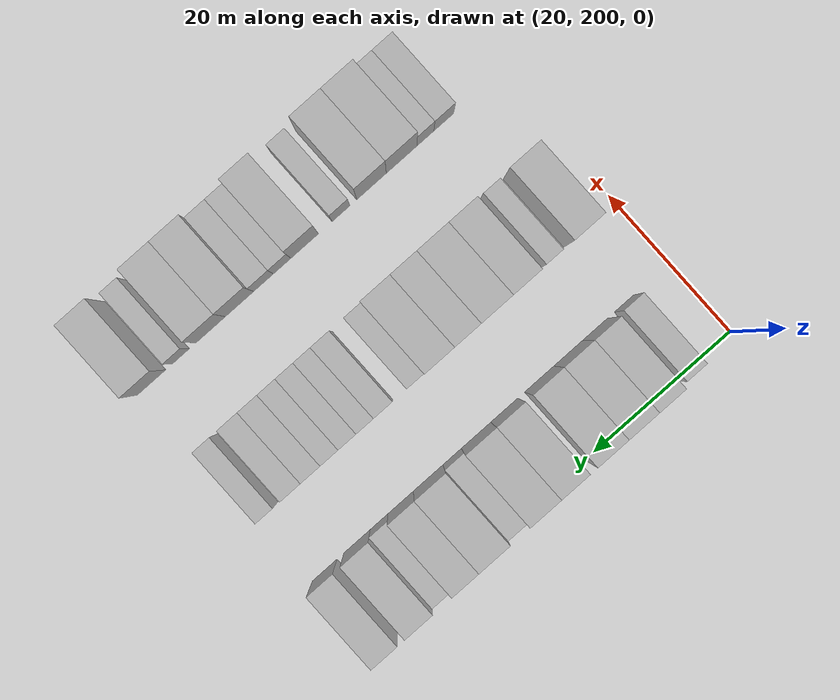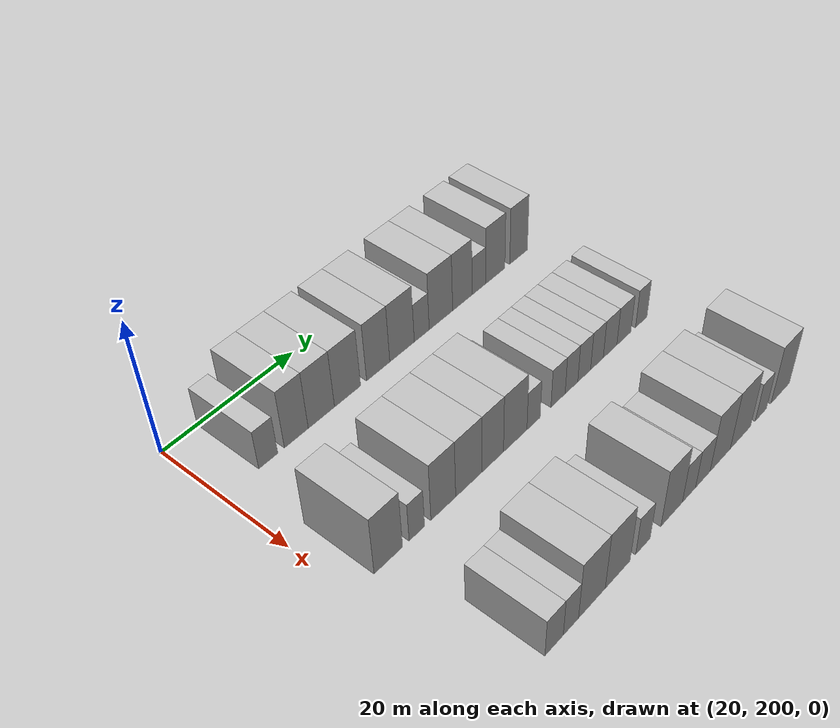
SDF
<sdf version="1.6">
 <world name="default">
  <model name="building_141">
   <static>1</static>
   <pose>25.0000 206.6423 0 0.000000 0.000000 0.000000</pose>
   <link name="link">
    <pose>0 0 3.00 0 0 0</pose>
    <collision name="collision"><geometry><box><size>10.0000 2.8532 6.0000</size></box></geometry></collision>
    <visual name="visual">
     <cast_shadows>0</cast_shadows>
     <geometry><box><size>10.0000 2.8532 6.0000</size></box></geometry>
     <material>
      <script>
       <uri>model://HANNAS_wall/materials/scripts</uri>
       <uri>model://HANNAS_wall/materials/textures</uri>
       <name>vrc/HANNAS_wall</name>
      </script>
     </material>
    </visual>
   </link>
  </model>
  <model name="building_142">
   <static>1</static>
   <pose>25.0000 210.9130 0 0.000000 0.000000 0.000000</pose>
   <link name="link">
    <pose>0 0 4.50 0 0 0</pose>
    <collision name="collision"><geometry><box><size>10.0000 3.6882 9.0000</size></box></geometry></collision>
    <visual name="visual">
     <cast_shadows>0</cast_shadows>
     <geometry><box><size>10.0000 3.6882 9.0000</size></box></geometry>
     <material>
      <script>
       <uri>model://HANNAS_wall/materials/scripts</uri>
       <uri>model://HANNAS_wall/materials/textures</uri>
       <name>vrc/HANNAS_wall</name>
      </script>
     </material>
    </visual>
   </link>
  </model>
  <model name="building_143">
   <static>1</static>
   <pose>25.0000 214.8537 0 0.000000 0.000000 0.000000</pose>
   <link name="link">
    <pose>0 0 4.50 0 0 0</pose>
    <collision name="collision"><geometry><box><size>10.0000 4.1931 9.0000</size></box></geometry></collision>
    <visual name="visual">
     <cast_shadows>0</cast_shadows>
     <geometry><box><size>10.0000 4.1931 9.0000</size></box></geometry>
     <material>
      <script>
       <uri>model://HANNAS_wall/materials/scripts</uri>
       <uri>model://HANNAS_wall/materials/textures</uri>
       <name>vrc/HANNAS_wall</name>
      </script>
     </material>
    </visual>
   </link>
  </model>
  <model name="building_144">
   <static>1</static>
   <pose>25.0000 219.1016 0 0.000000 0.000000 0.000000</pose>
   <link name="link">
    <pose>0 0 4.50 0 0 0</pose>
    <collision name="collision"><geometry><box><size>10.0000 4.3026 9.0000</size></box></geometry></collision>
    <visual name="visual">
     <cast_shadows>0</cast_shadows>
     <geometry><box><size>10.0000 4.3026 9.0000</size></box></geometry>
     <material>
      <script>
       <uri>model://HANNAS_wall/materials/scripts</uri>
       <uri>model://HANNAS_wall/materials/textures</uri>
       <name>vrc/HANNAS_wall</name>
      </script>
     </material>
    </visual>
   </link>
  </model>
  <model name="building_145">
   <static>1</static>
   <pose>25.0000 224.2383 0 0.000000 0.000000 0.000000</pose>
   <link name="link">
    <pose>0 0 4.50 0 0 0</pose>
    <collision name="collision"><geometry><box><size>10.0000 3.9708 9.0000</size></box></geometry></collision>
    <visual name="visual">
     <cast_shadows>0</cast_shadows>
     <geometry><box><size>10.0000 3.9708 9.0000</size></box></geometry>
     <material>
      <script>
       <uri>model://HANNAS_wall/materials/scripts</uri>
       <uri>model://HANNAS_wall/materials/textures</uri>
       <name>vrc/HANNAS_wall</name>
      </script>
     </material>
    </visual>
   </link>
  </model>
  <model name="building_146">
   <static>1</static>
   <pose>25.0000 228.3854 0 0.000000 0.000000 0.000000</pose>
   <link name="link">
    <pose>0 0 4.50 0 0 0</pose>
    <collision name="collision"><geometry><box><size>10.0000 4.3234 9.0000</size></box></geometry></collision>
    <visual name="visual">
     <cast_shadows>0</cast_shadows>
     <geometry><box><size>10.0000 4.3234 9.0000</size></box></geometry>
     <material>
      <script>
       <uri>model://HANNAS_wall/materials/scripts</uri>
       <uri>model://HANNAS_wall/materials/textures</uri>
       <name>vrc/HANNAS_wall</name>
      </script>
     </material>
    </visual>
   </link>
  </model>
  <model name="building_147">
   <static>1</static>
   <pose>25.0000 231.8959 0 0.000000 0.000000 0.000000</pose>
   <link name="link">
    <pose>0 0 3.00 0 0 0</pose>
    <collision name="collision"><geometry><box><size>10.0000 2.6977 6.0000</size></box></geometry></collision>
    <visual name="visual">
     <cast_shadows>0</cast_shadows>
     <geometry><box><size>10.0000 2.6977 6.0000</size></box></geometry>
     <material>
      <script>
       <uri>model://HANNAS_wall/materials/scripts</uri>
       <uri>model://HANNAS_wall/materials/textures</uri>
       <name>vrc/HANNAS_wall</name>
      </script>
     </material>
    </visual>
   </link>
  </model>
  <model name="building_148">
   <static>1</static>
   <pose>25.0000 235.4217 0 0.000000 0.000000 0.000000</pose>
   <link name="link">
    <pose>0 0 4.50 0 0 0</pose>
    <collision name="collision"><geometry><box><size>10.0000 4.3541 9.0000</size></box></geometry></collision>
    <visual name="visual">
     <cast_shadows>0</cast_shadows>
     <geometry><box><size>10.0000 4.3541 9.0000</size></box></geometry>
     <material>
      <script>
       <uri>model://HANNAS_wall/materials/scripts</uri>
       <uri>model://HANNAS_wall/materials/textures</uri>
       <name>vrc/HANNAS_wall</name>
      </script>
     </material>
    </visual>
   </link>
  </model>
  <model name="building_149">
   <static>1</static>
   <pose>25.0000 239.4622 0 0.000000 0.000000 0.000000</pose>
   <link name="link">
    <pose>0 0 4.50 0 0 0</pose>
    <collision name="collision"><geometry><box><size>10.0000 3.7268 9.0000</size></box></geometry></collision>
    <visual name="visual">
     <cast_shadows>0</cast_shadows>
     <geometry><box><size>10.0000 3.7268 9.0000</size></box></geometry>
     <material>
      <script>
       <uri>model://HANNAS_wall/materials/scripts</uri>
       <uri>model://HANNAS_wall/materials/textures</uri>
       <name>vrc/HANNAS_wall</name>
      </script>
     </material>
    </visual>
   </link>
  </model>
  <model name="building_150">
   <static>1</static>
   <pose>25.0000 242.6299 0 0.000000 0.000000 0.000000</pose>
   <link name="link">
    <pose>0 0 3.00 0 0 0</pose>
    <collision name="collision"><geometry><box><size>10.0000 2.6086 6.0000</size></box></geometry></collision>
    <visual name="visual">
     <cast_shadows>0</cast_shadows>
     <geometry><box><size>10.0000 2.6086 6.0000</size></box></geometry>
     <material>
      <script>
       <uri>model://HANNAS_wall/materials/scripts</uri>
       <uri>model://HANNAS_wall/materials/textures</uri>
       <name>vrc/HANNAS_wall</name>
      </script>
     </material>
    </visual>
   </link>
  </model>
  <model name="building_151">
   <static>1</static>
   <pose>25.0000 245.8676 0 0.000000 0.000000 0.000000</pose>
   <link name="link">
    <pose>0 0 4.50 0 0 0</pose>
    <collision name="collision"><geometry><box><size>10.0000 3.8668 9.0000</size></box></geometry></collision>
    <visual name="visual">
     <cast_shadows>0</cast_shadows>
     <geometry><box><size>10.0000 3.8668 9.0000</size></box></geometry>
     <material>
      <script>
       <uri>model://HANNAS_wall/materials/scripts</uri>
       <uri>model://HANNAS_wall/materials/textures</uri>
       <name>vrc/HANNAS_wall</name>
      </script>
     </material>
    </visual>
   </link>
  </model>
  <model name="building_152">
   <static>1</static>
   <pose>25.0000 250.6155 0 0.000000 0.000000 0.000000</pose>
   <link name="link">
    <pose>0 0 4.50 0 0 0</pose>
    <collision name="collision"><geometry><box><size>10.0000 3.6291 9.0000</size></box></geometry></collision>
    <visual name="visual">
     <cast_shadows>0</cast_shadows>
     <geometry><box><size>10.0000 3.6291 9.0000</size></box></geometry>
     <material>
      <script>
       <uri>model://HANNAS_wall/materials/scripts</uri>
       <uri>model://HANNAS_wall/materials/textures</uri>
       <name>vrc/HANNAS_wall</name>
      </script>
     </material>
    </visual>
   </link>
  </model>
  <model name="building_306">
   <static>1</static>
   <pose>44.0000 205.3498 0 0.000000 0.000000 0.000000</pose>
   <link name="link">
    <pose>0 0 4.50 0 0 0</pose>
    <collision name="collision"><geometry><box><size>10.0000 4.2791 9.0000</size></box></geometry></collision>
    <visual name="visual">
     <cast_shadows>0</cast_shadows>
     <geometry><box><size>10.0000 4.2791 9.0000</size></box></geometry>
     <material>
      <script>
       <uri>model://HANNAS_wall/materials/scripts</uri>
       <uri>model://HANNAS_wall/materials/textures</uri>
       <name>vrc/HANNAS_wall</name>
      </script>
     </material>
    </visual>
   </link>
  </model>
  <model name="building_307">
   <static>1</static>
   <pose>44.0000 209.6932 0 0.000000 0.000000 0.000000</pose>
   <link name="link">
    <pose>0 0 3.00 0 0 0</pose>
    <collision name="collision"><geometry><box><size>10.0000 2.4078 6.0000</size></box></geometry></collision>
    <visual name="visual">
     <cast_shadows>0</cast_shadows>
     <geometry><box><size>10.0000 2.4078 6.0000</size></box></geometry>
     <material>
      <script>
       <uri>model://HANNAS_wall/materials/scripts</uri>
       <uri>model://HANNAS_wall/materials/textures</uri>
       <name>vrc/HANNAS_wall</name>
      </script>
     </material>
    </visual>
   </link>
  </model>
  <model name="building_308">
   <static>1</static>
   <pose>44.0000 213.8956 0 0.000000 0.000000 0.000000</pose>
   <link name="link">
    <pose>0 0 4.50 0 0 0</pose>
    <collision name="collision"><geometry><box><size>10.0000 3.9969 9.0000</size></box></geometry></collision>
    <visual name="visual">
     <cast_shadows>0</cast_shadows>
     <geometry><box><size>10.0000 3.9969 9.0000</size></box></geometry>
     <material>
      <script>
       <uri>model://HANNAS_wall/materials/scripts</uri>
       <uri>model://HANNAS_wall/materials/textures</uri>
       <name>vrc/HANNAS_wall</name>
      </script>
     </material>
    </visual>
   </link>
  </model>
  <model name="building_309">
   <static>1</static>
   <pose>44.0000 218.1007 0 0.000000 0.000000 0.000000</pose>
   <link name="link">
    <pose>0 0 4.50 0 0 0</pose>
    <collision name="collision"><geometry><box><size>10.0000 4.4133 9.0000</size></box></geometry></collision>
    <visual name="visual">
     <cast_shadows>0</cast_shadows>
     <geometry><box><size>10.0000 4.4133 9.0000</size></box></geometry>
     <material>
      <script>
       <uri>model://HANNAS_wall/materials/scripts</uri>
       <uri>model://HANNAS_wall/materials/textures</uri>
       <name>vrc/HANNAS_wall</name>
      </script>
     </material>
    </visual>
   </link>
  </model>
  <model name="building_310">
   <static>1</static>
   <pose>44.0000 222.1472 0 0.000000 0.000000 0.000000</pose>
   <link name="link">
    <pose>0 0 4.50 0 0 0</pose>
    <collision name="collision"><geometry><box><size>10.0000 3.6796 9.0000</size></box></geometry></collision>
    <visual name="visual">
     <cast_shadows>0</cast_shadows>
     <geometry><box><size>10.0000 3.6796 9.0000</size></box></geometry>
     <material>
      <script>
       <uri>model://HANNAS_wall/materials/scripts</uri>
       <uri>model://HANNAS_wall/materials/textures</uri>
       <name>vrc/HANNAS_wall</name>
      </script>
     </material>
    </visual>
   </link>
  </model>
  <model name="building_311">
   <static>1</static>
   <pose>44.0000 226.0698 0 0.000000 0.000000 0.000000</pose>
   <link name="link">
    <pose>0 0 4.50 0 0 0</pose>
    <collision name="collision"><geometry><box><size>10.0000 4.1657 9.0000</size></box></geometry></collision>
    <visual name="visual">
     <cast_shadows>0</cast_shadows>
     <geometry><box><size>10.0000 4.1657 9.0000</size></box></geometry>
     <material>
      <script>
       <uri>model://HANNAS_wall/materials/scripts</uri>
       <uri>model://HANNAS_wall/materials/textures</uri>
       <name>vrc/HANNAS_wall</name>
      </script>
     </material>
    </visual>
   </link>
  </model>
  <model name="building_312">
   <static>1</static>
   <pose>44.0000 229.3638 0 0.000000 0.000000 0.000000</pose>
   <link name="link">
    <pose>0 0 3.00 0 0 0</pose>
    <collision name="collision"><geometry><box><size>10.0000 2.4222 6.0000</size></box></geometry></collision>
    <visual name="visual">
     <cast_shadows>0</cast_shadows>
     <geometry><box><size>10.0000 2.4222 6.0000</size></box></geometry>
     <material>
      <script>
       <uri>model://HANNAS_wall/materials/scripts</uri>
       <uri>model://HANNAS_wall/materials/textures</uri>
       <name>vrc/HANNAS_wall</name>
      </script>
     </material>
    </visual>
   </link>
  </model>
  <model name="building_313">
   <static>1</static>
   <pose>44.0000 233.9124 0 0.000000 0.000000 0.000000</pose>
   <link name="link">
    <pose>0 0 3.00 0 0 0</pose>
    <collision name="collision"><geometry><box><size>10.0000 2.6751 6.0000</size></box></geometry></collision>
    <visual name="visual">
     <cast_shadows>0</cast_shadows>
     <geometry><box><size>10.0000 2.6751 6.0000</size></box></geometry>
     <material>
      <script>
       <uri>model://HANNAS_wall/materials/scripts</uri>
       <uri>model://HANNAS_wall/materials/textures</uri>
       <name>vrc/HANNAS_wall</name>
      </script>
     </material>
    </visual>
   </link>
  </model>
  <model name="building_314">
   <static>1</static>
   <pose>44.0000 236.4684 0 0.000000 0.000000 0.000000</pose>
   <link name="link">
    <pose>0 0 3.00 0 0 0</pose>
    <collision name="collision"><geometry><box><size>10.0000 2.4369 6.0000</size></box></geometry></collision>
    <visual name="visual">
     <cast_shadows>0</cast_shadows>
     <geometry><box><size>10.0000 2.4369 6.0000</size></box></geometry>
     <material>
      <script>
       <uri>model://HANNAS_wall/materials/scripts</uri>
       <uri>model://HANNAS_wall/materials/textures</uri>
       <name>vrc/HANNAS_wall</name>
      </script>
     </material>
    </visual>
   </link>
  </model>
  <model name="building_315">
   <static>1</static>
   <pose>44.0000 238.9477 0 0.000000 0.000000 0.000000</pose>
   <link name="link">
    <pose>0 0 3.00 0 0 0</pose>
    <collision name="collision"><geometry><box><size>10.0000 2.5216 6.0000</size></box></geometry></collision>
    <visual name="visual">
     <cast_shadows>0</cast_shadows>
     <geometry><box><size>10.0000 2.5216 6.0000</size></box></geometry>
     <material>
      <script>
       <uri>model://HANNAS_wall/materials/scripts</uri>
       <uri>model://HANNAS_wall/materials/textures</uri>
       <name>vrc/HANNAS_wall</name>
      </script>
     </material>
    </visual>
   </link>
  </model>
  <model name="building_316">
   <static>1</static>
   <pose>44.0000 241.4748 0 0.000000 0.000000 0.000000</pose>
   <link name="link">
    <pose>0 0 3.00 0 0 0</pose>
    <collision name="collision"><geometry><box><size>10.0000 2.5327 6.0000</size></box></geometry></collision>
    <visual name="visual">
     <cast_shadows>0</cast_shadows>
     <geometry><box><size>10.0000 2.5327 6.0000</size></box></geometry>
     <material>
      <script>
       <uri>model://HANNAS_wall/materials/scripts</uri>
       <uri>model://HANNAS_wall/materials/textures</uri>
       <name>vrc/HANNAS_wall</name>
      </script>
     </material>
    </visual>
   </link>
  </model>
  <model name="building_317">
   <static>1</static>
   <pose>44.0000 244.1294 0 0.000000 0.000000 0.000000</pose>
   <link name="link">
    <pose>0 0 3.00 0 0 0</pose>
    <collision name="collision"><geometry><box><size>10.0000 2.7765 6.0000</size></box></geometry></collision>
    <visual name="visual">
     <cast_shadows>0</cast_shadows>
     <geometry><box><size>10.0000 2.7765 6.0000</size></box></geometry>
     <material>
      <script>
       <uri>model://HANNAS_wall/materials/scripts</uri>
       <uri>model://HANNAS_wall/materials/textures</uri>
       <name>vrc/HANNAS_wall</name>
      </script>
     </material>
    </visual>
   </link>
  </model>
  <model name="building_318">
   <static>1</static>
   <pose>44.0000 246.9705 0 0.000000 0.000000 0.000000</pose>
   <link name="link">
    <pose>0 0 3.00 0 0 0</pose>
    <collision name="collision"><geometry><box><size>10.0000 2.9056 6.0000</size></box></geometry></collision>
    <visual name="visual">
     <cast_shadows>0</cast_shadows>
     <geometry><box><size>10.0000 2.9056 6.0000</size></box></geometry>
     <material>
      <script>
       <uri>model://HANNAS_wall/materials/scripts</uri>
       <uri>model://HANNAS_wall/materials/textures</uri>
       <name>vrc/HANNAS_wall</name>
      </script>
     </material>
    </visual>
   </link>
  </model>
  <model name="building_319">
   <static>1</static>
   <pose>44.0000 250.6443 0 0.000000 0.000000 0.000000</pose>
   <link name="link">
    <pose>0 0 3.00 0 0 0</pose>
    <collision name="collision"><geometry><box><size>10.0000 2.4419 6.0000</size></box></geometry></collision>
    <visual name="visual">
     <cast_shadows>0</cast_shadows>
     <geometry><box><size>10.0000 2.4419 6.0000</size></box></geometry>
     <material>
      <script>
       <uri>model://HANNAS_wall/materials/scripts</uri>
       <uri>model://HANNAS_wall/materials/textures</uri>
       <name>vrc/HANNAS_wall</name>
      </script>
     </material>
    </visual>
   </link>
  </model>
  <model name="building_484">
   <static>1</static>
   <pose>63.0000 208.2084 0 0.000000 0.000000 0.000000</pose>
   <link name="link">
    <pose>0 0 3.00 0 0 0</pose>
    <collision name="collision"><geometry><box><size>10.0000 2.9132 6.0000</size></box></geometry></collision>
    <visual name="visual">
     <cast_shadows>0</cast_shadows>
     <geometry><box><size>10.0000 2.9132 6.0000</size></box></geometry>
     <material>
      <script>
       <uri>model://HANNAS_wall/materials/scripts</uri>
       <uri>model://HANNAS_wall/materials/textures</uri>
       <name>vrc/HANNAS_wall</name>
      </script>
     </material>
    </visual>
   </link>
  </model>
  <model name="building_485">
   <static>1</static>
   <pose>63.0000 210.9046 0 0.000000 0.000000 0.000000</pose>
   <link name="link">
    <pose>0 0 3.00 0 0 0</pose>
    <collision name="collision"><geometry><box><size>10.0000 2.4792 6.0000</size></box></geometry></collision>
    <visual name="visual">
     <cast_shadows>0</cast_shadows>
     <geometry><box><size>10.0000 2.4792 6.0000</size></box></geometry>
     <material>
      <script>
       <uri>model://HANNAS_wall/materials/scripts</uri>
       <uri>model://HANNAS_wall/materials/textures</uri>
       <name>vrc/HANNAS_wall</name>
      </script>
     </material>
    </visual>
   </link>
  </model>
  <model name="building_486">
   <static>1</static>
   <pose>63.0000 214.3839 0 0.000000 0.000000 0.000000</pose>
   <link name="link">
    <pose>0 0 4.50 0 0 0</pose>
    <collision name="collision"><geometry><box><size>10.0000 4.4794 9.0000</size></box></geometry></collision>
    <visual name="visual">
     <cast_shadows>0</cast_shadows>
     <geometry><box><size>10.0000 4.4794 9.0000</size></box></geometry>
     <material>
      <script>
       <uri>model://HANNAS_wall/materials/scripts</uri>
       <uri>model://HANNAS_wall/materials/textures</uri>
       <name>vrc/HANNAS_wall</name>
      </script>
     </material>
    </visual>
   </link>
  </model>
  <model name="building_487">
   <static>1</static>
   <pose>63.0000 218.7900 0 0.000000 0.000000 0.000000</pose>
   <link name="link">
    <pose>0 0 4.50 0 0 0</pose>
    <collision name="collision"><geometry><box><size>10.0000 4.3327 9.0000</size></box></geometry></collision>
    <visual name="visual">
     <cast_shadows>0</cast_shadows>
     <geometry><box><size>10.0000 4.3327 9.0000</size></box></geometry>
     <material>
      <script>
       <uri>model://HANNAS_wall/materials/scripts</uri>
       <uri>model://HANNAS_wall/materials/textures</uri>
       <name>vrc/HANNAS_wall</name>
      </script>
     </material>
    </visual>
   </link>
  </model>
  <model name="building_488">
   <static>1</static>
   <pose>63.0000 223.2648 0 0.000000 0.000000 0.000000</pose>
   <link name="link">
    <pose>0 0 3.00 0 0 0</pose>
    <collision name="collision"><geometry><box><size>10.0000 2.6169 6.0000</size></box></geometry></collision>
    <visual name="visual">
     <cast_shadows>0</cast_shadows>
     <geometry><box><size>10.0000 2.6169 6.0000</size></box></geometry>
     <material>
      <script>
       <uri>model://HANNAS_wall/materials/scripts</uri>
       <uri>model://HANNAS_wall/materials/textures</uri>
       <name>vrc/HANNAS_wall</name>
      </script>
     </material>
    </visual>
   </link>
  </model>
  <model name="building_489">
   <static>1</static>
   <pose>63.0000 228.6006 0 0.000000 0.000000 0.000000</pose>
   <link name="link">
    <pose>0 0 4.50 0 0 0</pose>
    <collision name="collision"><geometry><box><size>10.0000 4.0546 9.0000</size></box></geometry></collision>
    <visual name="visual">
     <cast_shadows>0</cast_shadows>
     <geometry><box><size>10.0000 4.0546 9.0000</size></box></geometry>
     <material>
      <script>
       <uri>model://HANNAS_wall/materials/scripts</uri>
       <uri>model://HANNAS_wall/materials/textures</uri>
       <name>vrc/HANNAS_wall</name>
      </script>
     </material>
    </visual>
   </link>
  </model>
  <model name="building_490">
   <static>1</static>
   <pose>63.0000 231.9087 0 0.000000 0.000000 0.000000</pose>
   <link name="link">
    <pose>0 0 3.00 0 0 0</pose>
    <collision name="collision"><geometry><box><size>10.0000 2.5616 6.0000</size></box></geometry></collision>
    <visual name="visual">
     <cast_shadows>0</cast_shadows>
     <geometry><box><size>10.0000 2.5616 6.0000</size></box></geometry>
     <material>
      <script>
       <uri>model://HANNAS_wall/materials/scripts</uri>
       <uri>model://HANNAS_wall/materials/textures</uri>
       <name>vrc/HANNAS_wall</name>
      </script>
     </material>
    </visual>
   </link>
  </model>
  <model name="building_491">
   <static>1</static>
   <pose>63.0000 234.6367 0 0.000000 0.000000 0.000000</pose>
   <link name="link">
    <pose>0 0 3.00 0 0 0</pose>
    <collision name="collision"><geometry><box><size>10.0000 2.8945 6.0000</size></box></geometry></collision>
    <visual name="visual">
     <cast_shadows>0</cast_shadows>
     <geometry><box><size>10.0000 2.8945 6.0000</size></box></geometry>
     <material>
      <script>
       <uri>model://HANNAS_wall/materials/scripts</uri>
       <uri>model://HANNAS_wall/materials/textures</uri>
       <name>vrc/HANNAS_wall</name>
      </script>
     </material>
    </visual>
   </link>
  </model>
  <model name="building_492">
   <static>1</static>
   <pose>63.0000 238.1534 0 0.000000 0.000000 0.000000</pose>
   <link name="link">
    <pose>0 0 4.50 0 0 0</pose>
    <collision name="collision"><geometry><box><size>10.0000 4.1388 9.0000</size></box></geometry></collision>
    <visual name="visual">
     <cast_shadows>0</cast_shadows>
     <geometry><box><size>10.0000 4.1388 9.0000</size></box></geometry>
     <material>
      <script>
       <uri>model://HANNAS_wall/materials/scripts</uri>
       <uri>model://HANNAS_wall/materials/textures</uri>
       <name>vrc/HANNAS_wall</name>
      </script>
     </material>
    </visual>
   </link>
  </model>
  <model name="building_493">
   <static>1</static>
   <pose>63.0000 242.3756 0 0.000000 0.000000 0.000000</pose>
   <link name="link">
    <pose>0 0 4.50 0 0 0</pose>
    <collision name="collision"><geometry><box><size>10.0000 4.3057 9.0000</size></box></geometry></collision>
    <visual name="visual">
     <cast_shadows>0</cast_shadows>
     <geometry><box><size>10.0000 4.3057 9.0000</size></box></geometry>
     <material>
      <script>
       <uri>model://HANNAS_wall/materials/scripts</uri>
       <uri>model://HANNAS_wall/materials/textures</uri>
       <name>vrc/HANNAS_wall</name>
      </script>
     </material>
    </visual>
   </link>
  </model>
  <model name="building_494">
   <static>1</static>
   <pose>63.0000 246.7604 0 0.000000 0.000000 0.000000</pose>
   <link name="link">
    <pose>0 0 3.00 0 0 0</pose>
    <collision name="collision"><geometry><box><size>10.0000 2.4637 6.0000</size></box></geometry></collision>
    <visual name="visual">
     <cast_shadows>0</cast_shadows>
     <geometry><box><size>10.0000 2.4637 6.0000</size></box></geometry>
     <material>
      <script>
       <uri>model://HANNAS_wall/materials/scripts</uri>
       <uri>model://HANNAS_wall/materials/textures</uri>
       <name>vrc/HANNAS_wall</name>
      </script>
     </material>
    </visual>
   </link>
  </model>
  <model name="building_495">
   <static>1</static>
   <pose>63.0000 251.0751 0 0.000000 0.000000 0.000000</pose>
   <link name="link">
    <pose>0 0 4.50 0 0 0</pose>
    <collision name="collision"><geometry><box><size>10.0000 4.1657 9.0000</size></box></geometry></collision>
    <visual name="visual">
     <cast_shadows>0</cast_shadows>
     <geometry><box><size>10.0000 4.1657 9.0000</size></box></geometry>
     <material>
      <script>
       <uri>model://HANNAS_wall/materials/scripts</uri>
       <uri>model://HANNAS_wall/materials/textures</uri>
       <name>vrc/HANNAS_wall</name>
      </script>
     </material>
    </visual>
   </link>
  </model>
 </world>
</sdf>
